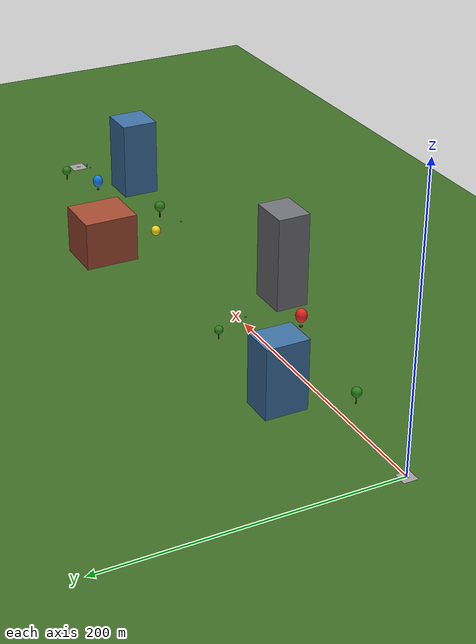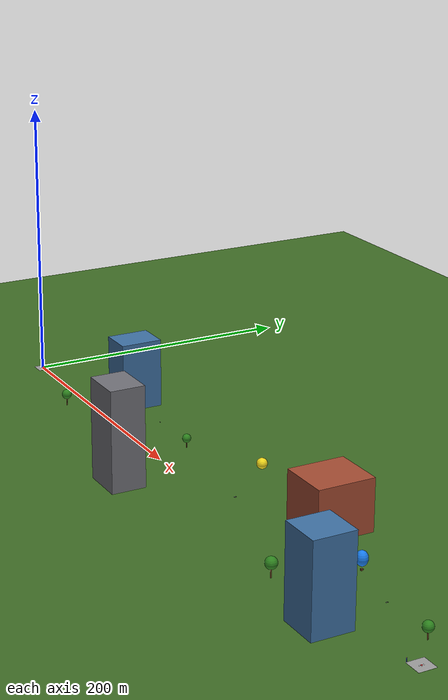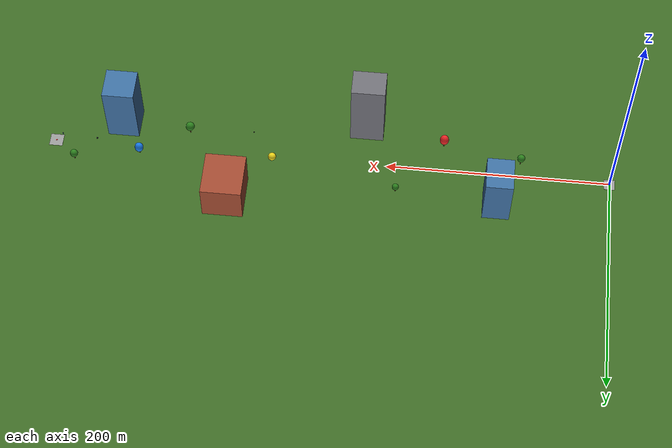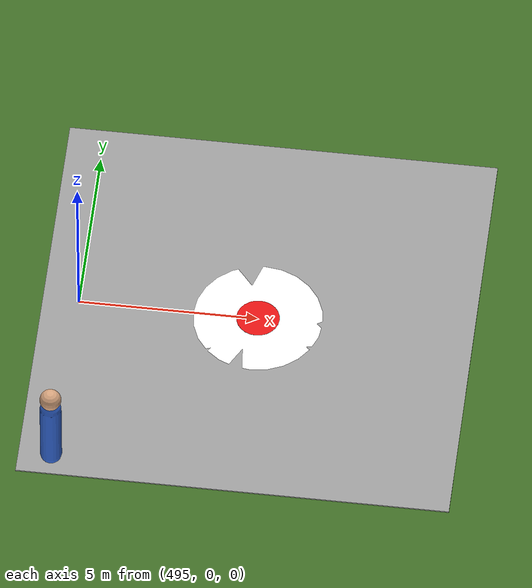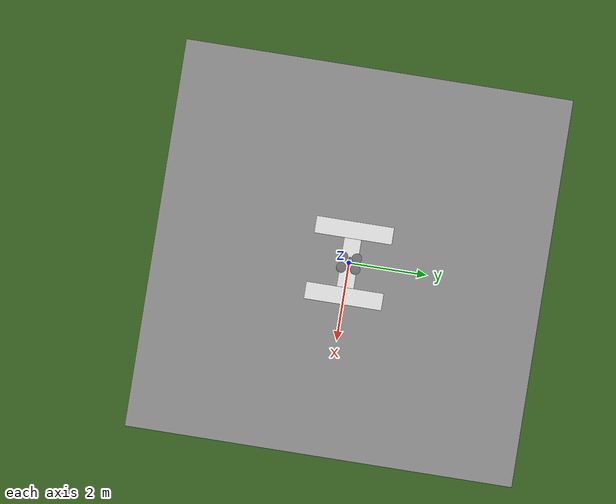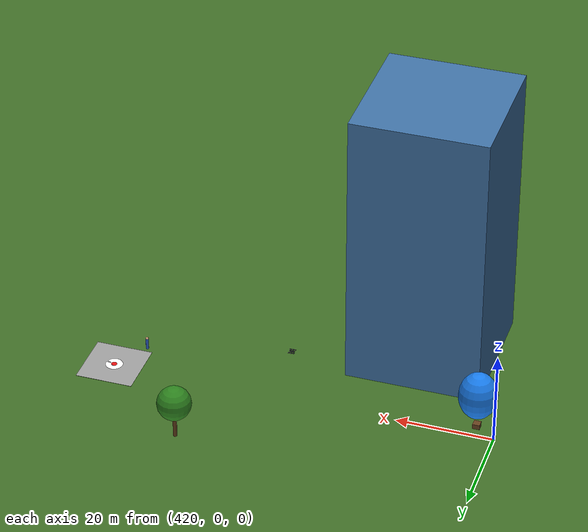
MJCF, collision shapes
<mujoco model="Skydio X2 500m Mission Scene">

  <!-- Include official Skydio X2 model -->
  <include file="mujoco_menagerie/skydio_x2/x2.xml"/>

  <statistic meansize=".05"/>

  <!-- Visual settings for dual rendering & long-range view -->
  <visual>
    <global offwidth="1280" offheight="720"
            azimuth="-20" elevation="-20" ellipsoidinertia="true"/>
    <headlight diffuse="0.6 0.6 0.6" ambient="0.3 0.3 0.3" specular="0 0 0"/>
    <rgba haze="0.10 0.20 0.30 1"/>
  </visual>

  <asset>
    <!-- Skybox -->
    <texture type="skybox" builtin="gradient"
             rgb1="0.52 0.72 0.92" rgb2="0.05 0.10 0.25"
             width="512" height="3072"/>
    <!-- Ground & Materials -->
    <texture type="2d" name="grass_tex" builtin="gradient"
             rgb1=".28 .48 .18" rgb2=".22 .38 .12"
             width="256" height="256"/>
    <texture type="2d" name="concrete_tex" builtin="flat"
             rgb1=".62 .62 .62" rgb2=".52 .52 .52"
             width="128" height="128"/>
    <material name="grass_mat"    texture="grass_tex"    texrepeat="300 300"/>
    <material name="concrete_mat" texture="concrete_tex" texrepeat="6 6" reflectance="0.15"/>
    <material name="marker_white" rgba="1 1 1 1"         reflectance="0.25"/>
    <material name="marker_red"   rgba=".90 .08 .08 1"   reflectance="0.1"/>
    <material name="marker_yel"   rgba=".95 .85 .05 1"/>
    <material name="tree_bark"    rgba=".38 .24 .10 1"/>
    <material name="tree_leaves"  rgba=".18 .52 .12 1"/>
    <material name="person_suit"  rgba=".18 .38 .80 1"/>
    <material name="person_skin"  rgba=".85 .65 .50 1"/>

    <!-- Building Materials -->
    <material name="bldg_glass"   rgba="0.25 0.45 0.65 0.9" reflectance="0.5"/>
    <material name="bldg_concrete" rgba="0.45 0.45 0.48 1.0" reflectance="0.1"/>
    <material name="bldg_brick"    rgba="0.65 0.30 0.20 1.0"/>

    <!-- Balloon & Bird Materials -->
    <material name="balloon_red"   rgba="0.95 0.15 0.15 1.0" reflectance="0.3"/>
    <material name="balloon_yellow" rgba="0.95 0.85 0.10 1.0" reflectance="0.3"/>
    <material name="balloon_blue"   rgba="0.10 0.50 0.95 1.0" reflectance="0.3"/>
    <material name="basket_mat"     rgba="0.40 0.25 0.12 1.0"/>
    <material name="bird_mat"       rgba="0.15 0.15 0.18 1.0"/>
  </asset>

  <worldbody>

    <!-- ── Lighting ──────────────────────────────────────────────────── -->
    <light name="sun" directional="true" pos="0 0 50"
           dir="-.3 -.2 -1" diffuse=".9 .85 .75" specular=".2 .2 .15"
           castshadow="true"/>
    <light name="fill" directional="true" pos="250 0 20" dir="0 0 -1"
           diffuse=".3 .35 .4" specular="0 0 0" castshadow="false"/>

    <!-- ── Extended Ground (1000m x 1000m) ───────────────────────────── -->
    <geom name="ground" type="plane" size="1000 1000 .1"
          material="grass_mat" pos="250 0 0"/>

    <!-- ── Concrete launch/landing pad (at Home 0,0) ────────────────── -->
    <geom name="pad" type="box" size="5 5 .02"
          material="concrete_mat" pos="0 0 .02"
          contype="0" conaffinity="0"/>

    <!-- ── H-marker (Home Landing Pad 0,0) ─────────────────────────── -->
    <geom name="h_left"  type="box" size=".22 1.0 .022"
          material="marker_white" pos="-0.85 0 .042"
          contype="0" conaffinity="0"/>
    <geom name="h_right" type="box" size=".22 1.0 .022"
          material="marker_white" pos=" 0.85 0 .042"
          contype="0" conaffinity="0"/>
    <geom name="h_bar"   type="box" size="1.07 .22 .022"
          material="marker_white" pos="0 0 .042"
          contype="0" conaffinity="0"/>

    <!-- ── 500m Target Drop Circle (500m East, 0m North) ─────────────── -->
    <geom name="target_pad" type="box" size="6 6 .02"
          material="concrete_mat" pos="500 0 .02"
          contype="0" conaffinity="0"/>
    <geom name="drop_ring_outer" type="cylinder" size="3.5 .008"
          material="marker_red" pos="500 0 .028"
          contype="0" conaffinity="0"/>
    <geom name="drop_ring_inner" type="cylinder" size="1.8 .010"
          material="marker_white" pos="500 0 .030"
          contype="0" conaffinity="0"/>
    <geom name="drop_bullseye"   type="cylinder" size=".60 .012"
          material="marker_red" pos="500 0 .032"
          contype="0" conaffinity="0"/>

    <!-- ── Buildings & Skyscrapers along 500m Corridor ──────────────── -->
    <!-- Building 1: Office Tower at x=100m, y=30m -->
    <geom name="bldg1" type="box" size="12 15 25" material="bldg_glass" pos="100 30 25"/>

    <!-- Building 2: Highrise Tower at x=220m, y=-40m -->
    <geom name="bldg2" type="box" size="15 12 35" material="bldg_concrete" pos="220 -40 35"/>

    <!-- Building 3: Industrial Complex at x=340m, y=45m -->
    <geom name="bldg3" type="box" size="18 20 18" material="bldg_brick" pos="340 45 18"/>

    <!-- Building 4: Skyscraper near Target at x=440m, y=-25m -->
    <geom name="bldg4" type="box" size="14 14 30" material="bldg_glass" pos="440 -25 30"/>

    <!-- ── Airborne Balloons floating along flight corridor ──────────── -->
    <!-- Balloon 1: Red Hot-Air Balloon at x=150m, y=-15m, z=28m -->
    <geom name="balloon1_sphere" type="ellipsoid" size="4 4 5" material="balloon_red" pos="150 -15 28"/>
    <geom name="balloon1_basket" type="box" size=".8 .8 .6" material="basket_mat" pos="150 -15 20"/>

    <!-- Balloon 2: Yellow Weather Balloon at x=300m, y=20m, z=32m -->
    <geom name="balloon2_sphere" type="sphere" size="3.5" material="balloon_yellow" pos="300 20 32"/>

    <!-- Balloon 3: Blue Air Balloon at x=420m, y=15m, z=22m -->
    <geom name="balloon3_sphere" type="ellipsoid" size="3.8 3.8 4.8" material="balloon_blue" pos="420 15 22"/>
    <geom name="balloon3_basket" type="box" size=".7 .7 .5" material="basket_mat" pos="420 15 15"/>

    <!-- ── Airborne Birds flying across corridor ─────────────────────── -->
    <!-- Bird Flock 1 at x=180m, y=10m, z=18m -->
    <geom name="bird1_body" type="capsule" size=".15 .4" material="bird_mat" pos="180 10 18" quat="0.707 0 0.707 0"/>
    <geom name="bird1_wing_l" type="box" size=".6 .1 .02" material="bird_mat" pos="180 10.5 18"/>
    <geom name="bird1_wing_r" type="box" size=".6 .1 .02" material="bird_mat" pos="180 9.5 18"/>

    <!-- Bird Flock 2 at x=320m, y=-10m, z=24m -->
    <geom name="bird2_body" type="capsule" size=".18 .45" material="bird_mat" pos="320 -10 24" quat="0.707 0 0.707 0"/>
    <geom name="bird2_wing_l" type="box" size=".7 .12 .02" material="bird_mat" pos="320 -9.4 24"/>
    <geom name="bird2_wing_r" type="box" size=".7 .12 .02" material="bird_mat" pos="320 -10.6 24"/>

    <!-- Bird Flock 3 at x=460m, y=5m, z=16m -->
    <geom name="bird3_body" type="capsule" size=".15 .4" material="bird_mat" pos="460 5 16" quat="0.707 0 0.707 0"/>
    <geom name="bird3_wing_l" type="box" size=".65 .1 .02" material="bird_mat" pos="460 5.6 16"/>
    <geom name="bird3_wing_r" type="box" size=".65 .1 .02" material="bird_mat" pos="460 4.4 16"/>

    <!-- ── Obstacle: Tree clusters along route ───────────────────────── -->
    <geom name="tr1_trunk" type="cylinder" size=".40 3.0" material="tree_bark"  pos="80  -15 3.0"/>
    <geom name="tr1_top"   type="sphere"   size="3.5"     material="tree_leaves" pos="80  -15 8.5"/>
    <geom name="tr2_trunk" type="cylinder" size=".35 2.5" material="tree_bark"  pos="190  25 2.5"/>
    <geom name="tr2_top"   type="sphere"   size="3.0"     material="tree_leaves" pos="190  25 7.0"/>
    <geom name="tr3_trunk" type="cylinder" size=".45 3.5" material="tree_bark"  pos="380 -20 3.5"/>
    <geom name="tr3_top"   type="sphere"   size="4.0"     material="tree_leaves" pos="380 -20 9.5"/>
    <geom name="tr4_trunk" type="cylinder" size=".40 3.0" material="tree_bark"  pos="480  18 3.0"/>
    <geom name="tr4_top"   type="sphere"   size="3.5"     material="tree_leaves" pos="480  18 8.0"/>

    <!-- ── Person Target near 500m Target Drop Zone ─────────────────── -->
    <geom name="person_body" type="capsule" size=".30 1.0"
          material="person_suit" pos="495 -6 2.0"/>
    <geom name="person_head" type="sphere"  size=".30"
          material="person_skin" pos="495 -6 3.4"/>

  </worldbody>

</mujoco>

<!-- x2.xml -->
<mujoco model="Skydio X2">
  <compiler autolimits="true"/>

  <option timestep="0.01" density="1.225" viscosity="1.8e-5"/>

  <default>
    <default class="x2">
      <geom mass="0"/>
      <motor ctrlrange="0 13"/>
      <mesh scale="0.01 0.01 0.01"/>
      <default class="visual">
        <geom group="2" type="mesh" contype="0" conaffinity="0"/>
      </default>
      <default class="collision">
        <geom group="3" type="box"/>
        <default class="rotor">
          <geom type="ellipsoid" size=".13 .13 .01"/>
        </default>
      </default>
      <site group="5"/>
    </default>
  </default>

  <asset>
    <texture type="2d" file="assets/X2_lowpoly_texture_SpinningProps_1024.png"/>
    <material name="phong3SG" texture="X2_lowpoly_texture_SpinningProps_1024"/>
    <material name="invisible" rgba="0 0 0 0"/>

    <mesh class="x2" file="assets/X2_lowpoly.obj"/>
  </asset>

  <worldbody>
    <light name="spotlight" mode="targetbodycom" target="x2" pos="0 -1 2"/>
    <body name="x2" pos="0 0 0.1" childclass="x2">
      <freejoint/>
      <camera name="track" pos="-1 0 .5" xyaxes="0 -1 0 1 0 2" mode="trackcom"/>
      <site name="imu" pos="0 0 .02"/>
      <geom material="phong3SG" mesh="X2_lowpoly" class="visual" quat="0 0 1 1"/>
      <geom class="collision" size=".06 .027 .02" pos=".04 0 .02"/>
      <geom class="collision" size=".06 .027 .02" pos=".04 0 .06"/>
      <geom class="collision" size=".05 .027 .02" pos="-.07 0 .065"/>
      <geom class="collision" size=".023 .017 .01" pos="-.137 .008 .065" quat="1 0 0 1"/>
      <geom name="rotor1" class="rotor" pos="-.14 -.18 .05" mass=".25"/>
      <geom name="rotor2" class="rotor" pos="-.14 .18 .05" mass=".25"/>
      <geom name="rotor3" class="rotor" pos=".14 .18 .08" mass=".25"/>
      <geom name="rotor4" class="rotor" pos=".14 -.18 .08" mass=".25"/>
      <geom size=".16 .04 .02" pos="0 0 0.02" type="ellipsoid" mass=".325" class="visual" material="invisible"/>
      <site name="thrust1" pos="-.14 -.18 .05"/>
      <site name="thrust2" pos="-.14 .18 .05"/>
      <site name="thrust3" pos=".14 .18 .08"/>
      <site name="thrust4" pos=".14 -.18 .08"/>
    </body>
  </worldbody>

  <actuator>
    <motor class="x2" name="thrust1" site="thrust1" gear="0 0 1 0 0 -.0201"/>
    <motor class="x2" name="thrust2" site="thrust2" gear="0 0 1 0 0 .0201"/>
    <motor class="x2" name="thrust3" site="thrust3" gear="0 0 1 0 0 -.0201"/>
    <motor class="x2" name="thrust4" site="thrust4" gear="0 0 1 0 0 .0201"/>
  </actuator>

  <sensor>
    <gyro name="body_gyro" site="imu"/>
    <accelerometer name="body_linacc" site="imu"/>
    <framequat name="body_quat" objtype="site" objname="imu"/>
  </sensor>

  <keyframe>
    <key name="hover" qpos="0 0 .3 1 0 0 0" ctrl="3.2495625 3.2495625 3.2495625 3.2495625"/>
  </keyframe>
</mujoco>
